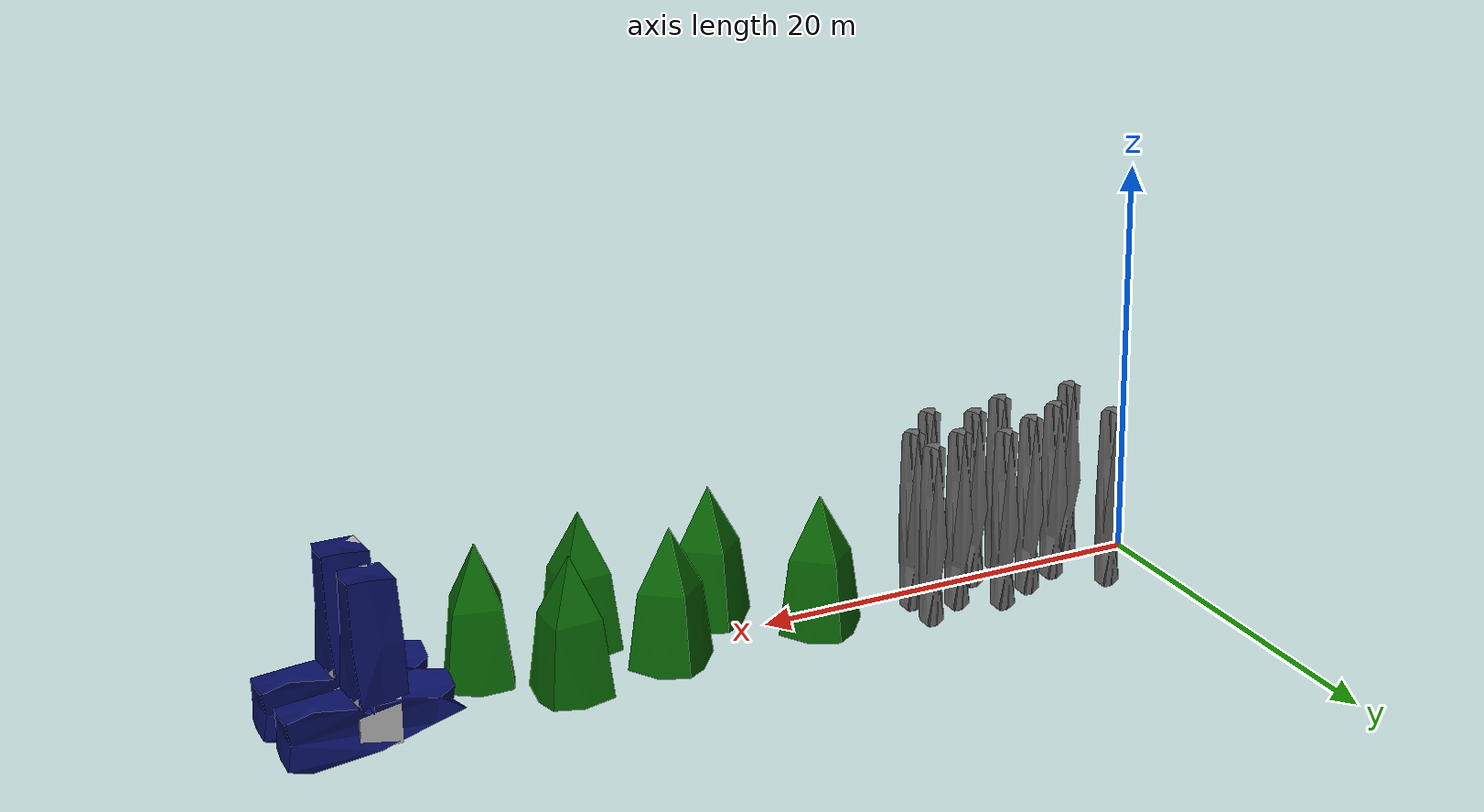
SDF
<sdf version="1.4">
 <world name="default">
  <include><uri>model://sun</uri></include>
  <plugin name="ros_interface_plugin" filename="librotors_gazebo_ros_interface_plugin.so"/>
  <spherical_coordinates>
   <surface_model>EARTH_WGS84</surface_model>
   <latitude_deg>47.3667</latitude_deg>
   <longitude_deg>8.5500</longitude_deg>
   <elevation>500.0</elevation>
   <heading_deg>0</heading_deg>
  </spherical_coordinates>
  <physics type="ode">
   <ode>
    <solver><type>quick</type><iters>1000</iters><sor>1.3</sor></solver>
    <constraints>
     <cfm>0</cfm>
     <erp>0.2</erp>
     <contact_max_correcting_vel>100</contact_max_correcting_vel>
     <contact_surface_layer>0.001</contact_surface_layer>
    </constraints>
   </ode>
   <max_step_size>0.01</max_step_size>
   <real_time_factor>1</real_time_factor>
   <real_time_update_rate>100</real_time_update_rate>
   <gravity>0 0 -9.8</gravity>
  </physics>
  <include>
   <static>true</static>
   <name>Simple Stone</name>
   <pose>2 2 0 0 0 0</pose>
   <uri>model://Simple Stone</uri>
  </include>
  <include>
   <static>true</static>
   <name>Simple Stone 2</name>
   <pose>2 -2 0 0 0 0</pose>
   <uri>model://Simple Stone</uri>
  </include>
  <include>
   <static>true</static>
   <name>Simple Stone 3</name>
   <pose>4 0 0 0 0 0</pose>
   <uri>model://Simple Stone</uri>
  </include>
  <include>
   <static>true</static>
   <name>Simple Stone 4</name>
   <pose>6 1 0 0 0 0</pose>
   <uri>model://Simple Stone</uri>
  </include>
  <include>
   <static>true</static>
   <name>Simple Stone 5</name>
   <pose>6 -2 0 0 0 0</pose>
   <uri>model://Simple Stone</uri>
  </include>
  <include>
   <static>true</static>
   <name>Simple Stone 6</name>
   <pose>8 -1 0 0 0 0</pose>
   <uri>model://Simple Stone</uri>
  </include>
  <include>
   <static>true</static>
   <name>Simple Stone 7</name>
   <pose>8 2 0 0 0 0</pose>
   <uri>model://Simple Stone</uri>
  </include>
  <include>
   <static>true</static>
   <name>Simple Stone 8</name>
   <pose>10 1 0 0 0 0</pose>
   <uri>model://Simple Stone</uri>
  </include>
  <include>
   <static>true</static>
   <name>Simple Stone 9</name>
   <pose>10 -2 0 0 0 0</pose>
   <uri>model://Simple Stone</uri>
  </include>
  <include>
   <static>true</static>
   <name>Simple Stone 10</name>
   <pose>12 0 0 0 0 0</pose>
   <uri>model://Simple Stone</uri>
  </include>
  <include>
   <static>true</static>
   <name>Simple Stone 11</name>
   <pose>12 2 0 0 0 0</pose>
   <uri>model://Simple Stone</uri>
  </include>
  <include>
   <static>true</static>
   <name>Simple Pyramid</name>
   <pose>17 -0.1 0 0 0 0</pose>
   <uri>model://Simple Pyramid</uri>
  </include>
  <include>
   <static>true</static>
   <name>Simple Pyramid 2</name>
   <pose>21.26 -3.6 0 0 0 0</pose>
   <uri>model://Simple Pyramid</uri>
  </include>
  <include>
   <static>true</static>
   <name>Simple Pyramid 3</name>
   <pose>25 -0 0 0 0 0</pose>
   <uri>model://Simple Pyramid</uri>
  </include>
  <include>
   <static>true</static>
   <name>Simple Pyramid 3</name>
   <pose>28 -3.7 0 0 0 0.76</pose>
   <uri>model://Simple Pyramid</uri>
  </include>
  <include>
   <static>true</static>
   <name>Simple Pyramid 4</name>
   <pose>30.4 0.74 0 0 0 0.76</pose>
   <uri>model://Simple Pyramid</uri>
  </include>
  <include>
   <static>true</static>
   <name>Simple Pyramid 5</name>
   <pose>33.7 -2.56 0 0 0 0.47</pose>
   <uri>model://Simple Pyramid</uri>
  </include>
  <include>
   <static>true</static>
   <name>Simple block</name>
   <pose>40.5 -1.38 0 0 0 0</pose>
   <uri>model://Simple Block</uri>
  </include>
  <include>
   <static>true</static>
   <name>Simple block 2</name>
   <pose>40.5 1.93 0 0 0 0</pose>
   <uri>model://Simple Block</uri>
  </include>
 </world>
</sdf>

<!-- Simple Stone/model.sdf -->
<sdf version='1.6'>
  <model name='Simple Stone'>
    <pose>0 0 0 0 0 0</pose>
    <static>true</static>
    <link name="link">
      <collision name="collision">
        <geometry>
          <mesh>
            <uri>model://Simple Stone/meshes/Simple Stone.dae</uri>
         </mesh>
        </geometry>
      </collision>
      <visual name="visual">
        <geometry>
          <mesh>
            <uri>model://Simple Stone/meshes/Simple Stone.dae</uri>
         </mesh>
        </geometry>
      </visual>
    </link>
  </model>
 </sdf>

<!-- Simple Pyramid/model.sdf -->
<sdf version='1.6'>
  <model name='Simple Pyramid'>
    <pose>0 0 0 0 0 0</pose>
    <static>true</static>
    <link name="link">
      <collision name="collision">
        <geometry>
          <mesh>
            <uri>model://Simple Pyramid/meshes/Simple Pyramid.dae</uri>
         </mesh>
        </geometry>
      </collision>
      <visual name="visual">
        <geometry>
          <mesh>
            <uri>model://Simple Pyramid/meshes/Simple Pyramid.dae</uri>
         </mesh>
        </geometry>
      </visual>
    </link>
  </model>
 </sdf>

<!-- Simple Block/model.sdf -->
<sdf version='1.6'>
  <model name='Simple Block'>
    <pose>0 0 0 0 0 0</pose>
    <static>true</static>
    <link name="link">
      <collision name="collision">
        <geometry>
          <mesh>
            <uri>model://Simple Block/meshes/Simple Block.dae</uri>
         </mesh>
        </geometry>
      </collision>
      <visual name="visual">
        <geometry>
          <mesh>
            <uri>model://Simple Block/meshes/Simple Block.dae</uri>
         </mesh>
        </geometry>
      </visual>
    </link>
  </model>
 </sdf>
